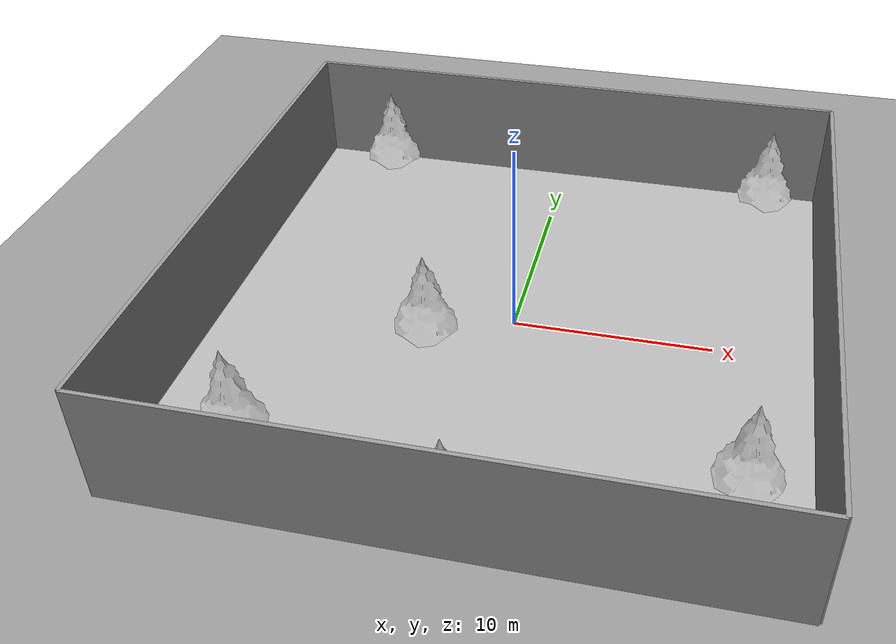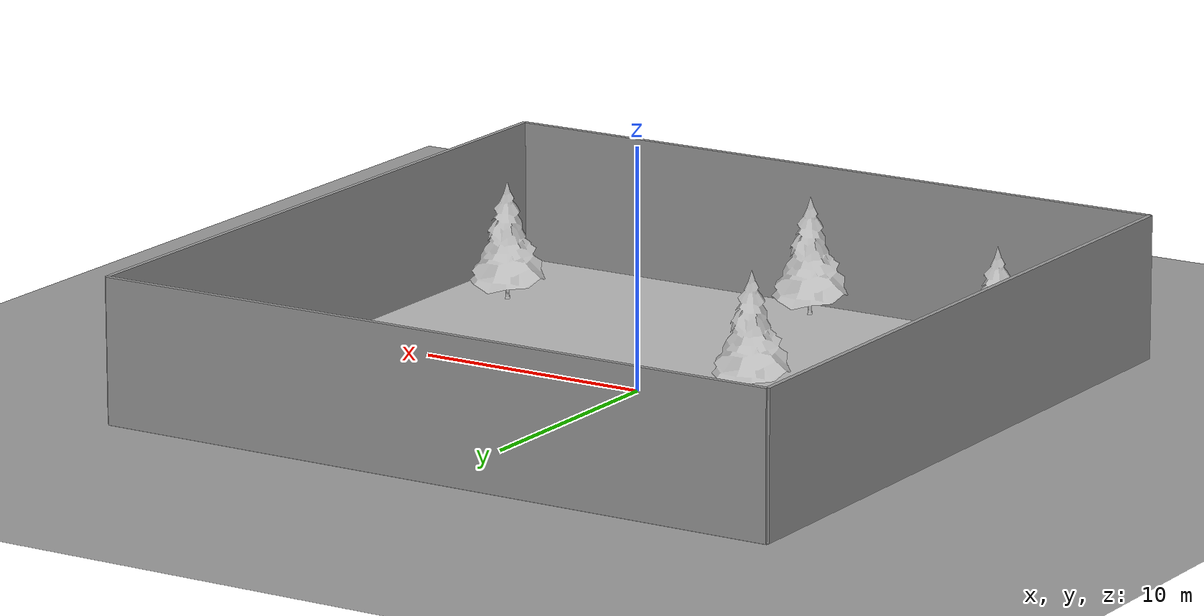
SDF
<sdf version="1.5">
 <world name="default">
  <include><uri>model://sun</uri></include>
  <include><uri>model://modified_ground_plane</uri></include>
  <include><uri>model://modified_concrete_plane</uri></include>
  <physics name="default_physics" default="0" type="ode">
   <gravity>0 0 -9.8066</gravity>
   <ode>
    <solver>
     <type>quick</type>
     <iters>10</iters>
     <sor>1.3</sor>
     <use_dynamic_moi_rescaling>0</use_dynamic_moi_rescaling>
    </solver>
    <constraints>
     <cfm>0</cfm>
     <erp>0.2</erp>
     <contact_max_correcting_vel>100</contact_max_correcting_vel>
     <contact_surface_layer>0.001</contact_surface_layer>
    </constraints>
   </ode>
   <max_step_size>0.002</max_step_size>
   <real_time_factor>1</real_time_factor>
   <real_time_update_rate>500</real_time_update_rate>
   <magnetic_field>6e-06 2.3e-05 -4.2e-05</magnetic_field>
  </physics>
  <include><uri>model://pine_tree</uri><name>forest</name><pose>12 13.5 0 0 0 0</pose></include>
  <include><uri>model://pine_tree</uri><name>forest</name><pose>-10.5 13.5 0 0 0 0</pose></include>
  <include><uri>model://pine_tree</uri><name>forest</name><pose>12 -9 0 0 0 0</pose></include>
  <include><uri>model://pine_tree</uri><name>forest</name><pose>-10.5 -10.5 0 0 0 0</pose></include>
  <include><uri>model://pine_tree</uri><name>forest</name><pose>-4 -2.15 0 0 0 0</pose></include>
  <include><uri>model://pine_tree</uri><name>forest</name><pose>0 -13.5 0 0 0 0</pose></include>
  <include>
   <name>modified_grey_wall</name>
   <uri>model://modified_grey_wall</uri>
   <pose>-15 0 0 0 0 -1.570796</pose>
  </include>
  <include>
   <name>modified_grey_wall2</name>
   <uri>model://modified_grey_wall</uri>
   <pose>0 15 0 0 0 0</pose>
  </include>
  <include>
   <name>modified_grey_wall3</name>
   <uri>model://modified_grey_wall</uri>
   <pose>15 0 0 0 0 -1.570796</pose>
  </include>
  <include>
   <name>modified_grey_wall4</name>
   <uri>model://modified_grey_wall</uri>
   <pose>0 -15 0 0 0 0</pose>
  </include>
 </world>
</sdf>

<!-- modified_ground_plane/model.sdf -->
<sdf version="1.5">
  <model name="modified_ground_plane">
    <static>true</static>
    <link name="link">
      <pose>-10 -10 0 0 0 0</pose>
      <collision name="collision">
        <geometry>
          <plane>
            <normal>0 0 1</normal>
            <size>200 200</size>
          </plane>
        </geometry>
        <surface>
          <contact>
             <collide_bitmask>65535</collide_bitmask>
          </contact>
          <friction>
            <ode>
              <mu>100</mu>
              <mu2>50</mu2>
            </ode>
          </friction>
        </surface>
      </collision>
      <visual name="visual">
        <cast_shadows>false</cast_shadows>
        <geometry>
          <plane>
            <normal>0 0 1</normal>
            <size>200 200</size>
          </plane>
        </geometry>
        <material>
          <script>
            <uri>file://media/materials/scripts/gazebo.material</uri>
            <name>Gazebo/Grey</name>
          </script>
        </material>
      </visual>
    </link>
  </model>
</sdf>

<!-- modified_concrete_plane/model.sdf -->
<sdf version="1.5">
  <model name="modified_concrete_plane">
    <static>true</static>
    <link name="link">
      <collision name="collision">
        <geometry>
          <box>
            <size>30 30 .1</size>
          </box>
        </geometry>
      </collision>
      <visual name="visual">
        <cast_shadows>false</cast_shadows>
        <geometry>
          <box>
            <size>30 30 .1</size>
          </box>
        </geometry>
        <material>
          <script>
            <uri>model://concrete_plane/materials/scripts</uri>
            <uri>model://concrete_plane/materials/textures</uri>
            <name>vrc/concrete</name>
          </script>
        </material>
      </visual>
    </link>
  </model>
</sdf>

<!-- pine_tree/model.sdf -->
<sdf version="1.6">
  <model name="pine_tree">
    <static>true</static>
    <link name="link">
      <collision name="collision">
        <geometry>
          <mesh>
            <uri>file://isr-testbed/pine_tree/meshes/pine_tree.dae</uri>
          </mesh>
        </geometry>
      </collision>
      <visual name="branch">
        <geometry>
          <mesh>
            <uri>file://isr-testbed/pine_tree/meshes/pine_tree.dae</uri>
            <submesh>
              <name>Branch</name>
            </submesh>
          </mesh>
        </geometry>
        <material>
          <script>
            <uri>file://isr-testbed/pine_tree/materials/scripts/</uri>
            <uri>file://isr-testbed/pine_tree/materials/textures/</uri>
            <name>PineTree/Branch</name>
          </script>
        </material>
      </visual>
      <visual name="bark">
        <geometry>
          <mesh>
            <uri>file://isr-testbed/pine_tree/meshes/pine_tree.dae</uri>
            <submesh>
              <name>Bark</name>
            </submesh>
          </mesh>
        </geometry>
        <material>
          <script>
            <uri>file://isr-testbed/pine_tree/materials/scripts/</uri>
            <uri>file://isr-testbed/pine_tree/materials/textures/</uri>
            <name>PineTree/Bark</name>
          </script>
        </material>
      </visual>
    </link>
  </model>
</sdf>

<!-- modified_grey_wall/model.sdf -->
<sdf version="1.5">
  <model name="modified_grey_wall">
    <static>true</static>
    <link name="link">
      <pose>0 0 3 0 0 0</pose>
      <collision name="collision">
        <geometry>
          <box>
            <size>30.0 0.2 6.0</size>
          </box>
        </geometry>
      </collision>
      <visual name="visual">
        <cast_shadows>false</cast_shadows>
        <geometry>
          <box>
            <size>30.0 0.2 6.0</size>
          </box>
        </geometry>
        <material>
          <script>
            <uri>model://modified_grey_wall/materials/scripts</uri>
            <uri>model://modified_grey_wall/materials/textures</uri>
            <name>vrc/grey_wall</name>
          </script>
        </material>
      </visual>
    </link>
  </model>
</sdf>
